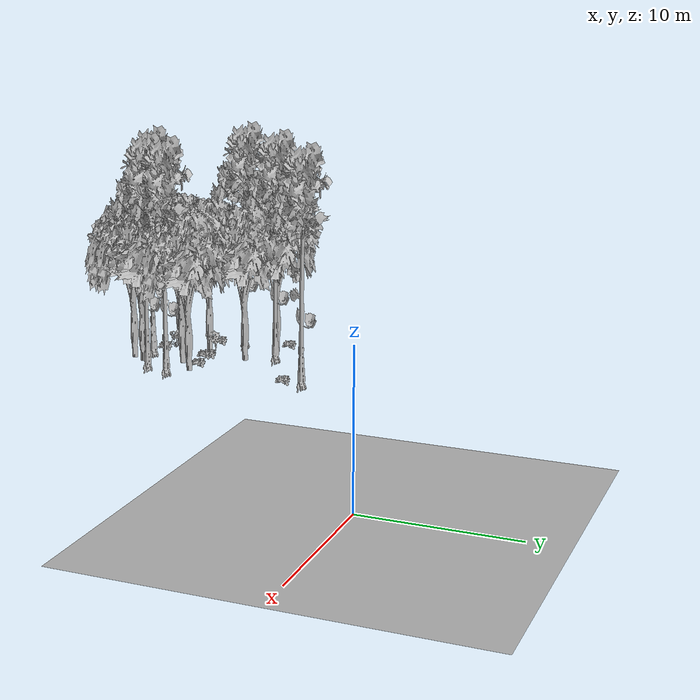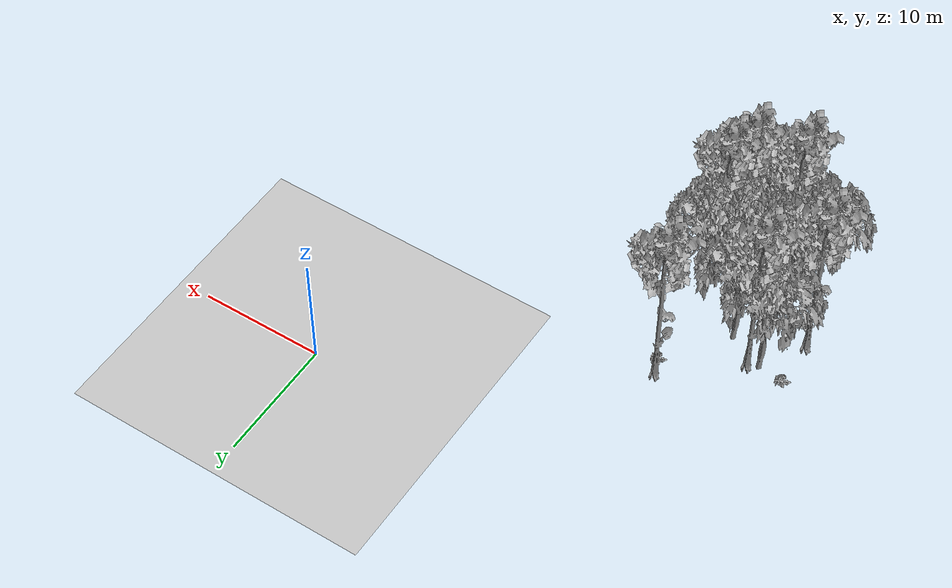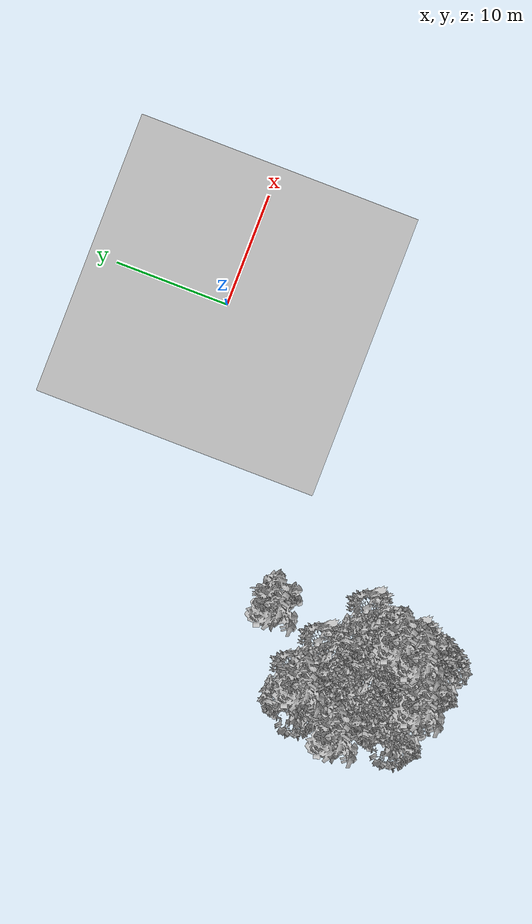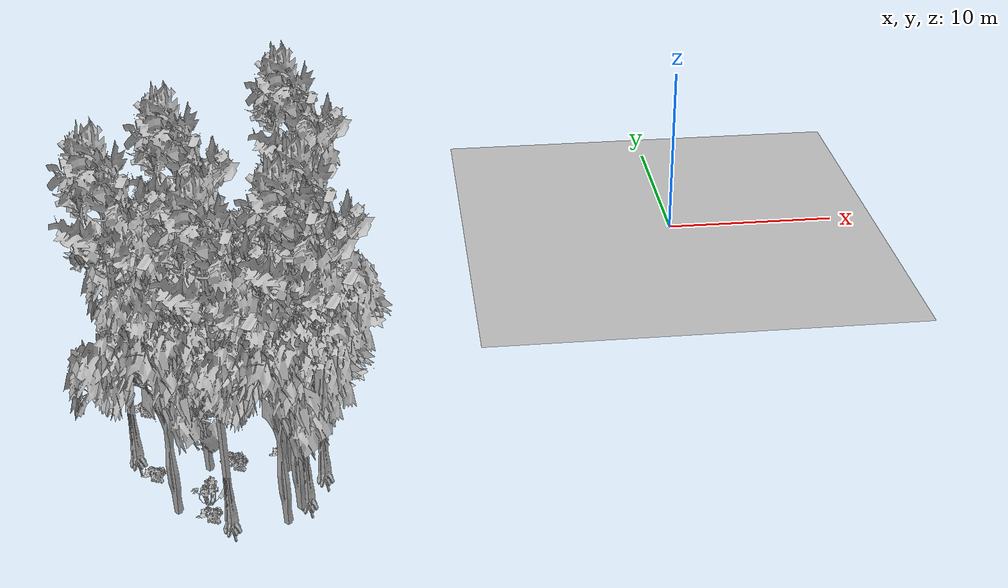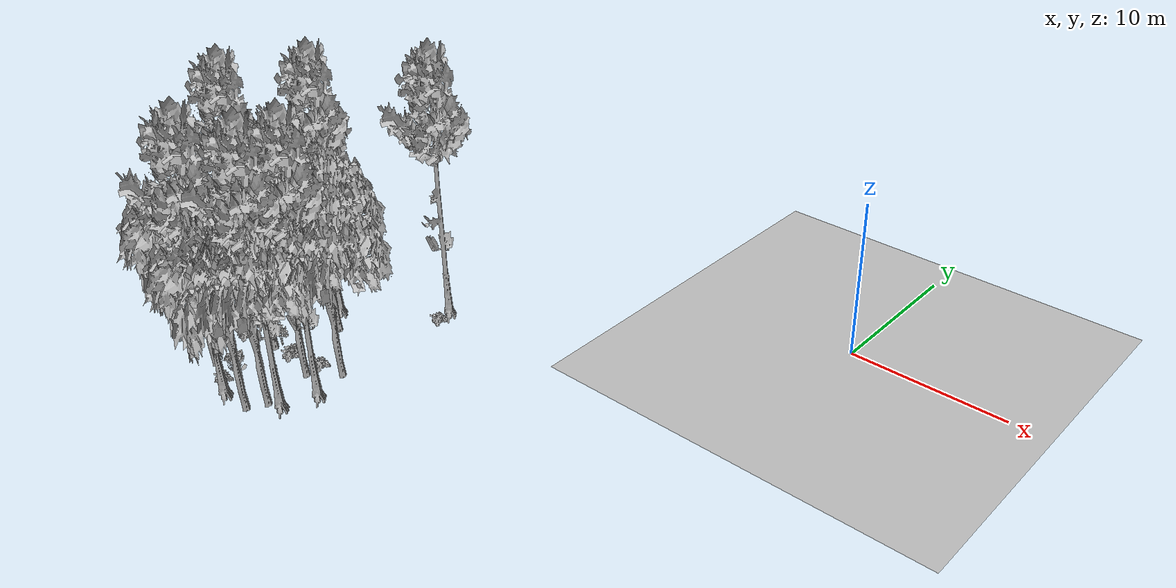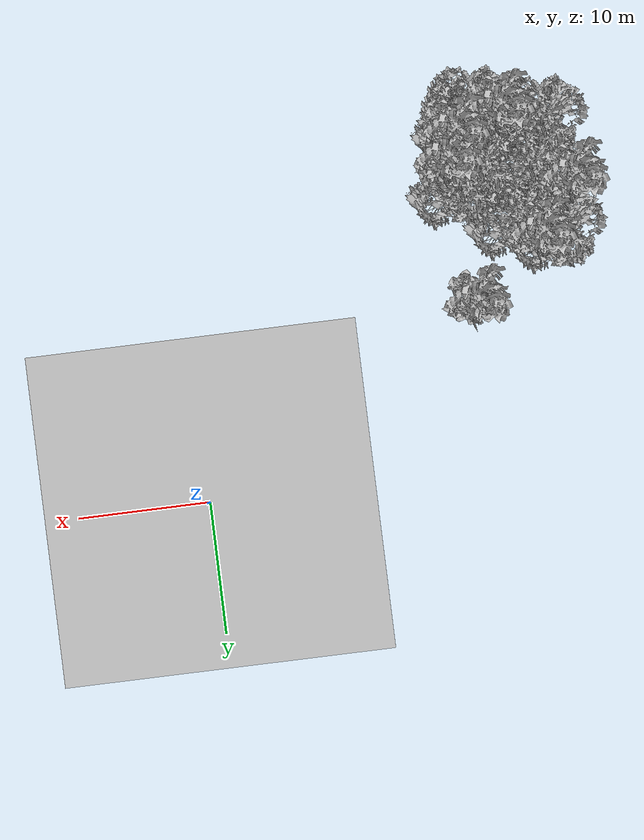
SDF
<sdf version="1.7">
 <world name="default">
  <model name="ground_plane">
   <static>1</static>
   <link name="link">
    <collision name="collision">
     <pose>-50 0 0 0 -0 0</pose>
     <geometry><plane><normal>0 0 1</normal><size>80 80</size></plane></geometry>
     <surface><contact><ode><min_depth>0.01</min_depth><max_vel>0</max_vel></ode></contact></surface>
    </collision>
    <visual name="grass">
     <cast_shadows>0</cast_shadows>
     <geometry>
      <mesh>
       <scale>0.46714285714285714 0.46714285714285714 0.1</scale>
       <uri>file://grass_plane/meshes/grass_plane.dae</uri>
      </mesh>
     </geometry>
    </visual>
   </link>
  </model>
  <model name="Tree 9">
   <static>1</static>
   <pose>-21.693524342783427 -24.979738271324365 0 1.57079 -0 0</pose>
   <link name="link">
    <collision name="collision">
     <geometry><mesh><scale>3.5 5 3.5</scale><uri>model://tree_9/meshes/tree_9.obj</uri></mesh></geometry>
    </collision>
    <visual name="visual">
     <geometry><mesh><scale>3.5 5 3.5</scale><uri>model://tree_9/meshes/tree_9.obj</uri></mesh></geometry>
    </visual>
   </link>
  </model>
  <model name="Tree 167">
   <static>1</static>
   <pose>-22.758314374811313 -22.50497529189002 0 1.57079 -0 0</pose>
   <link name="link">
    <collision name="collision">
     <geometry><mesh><scale>3.5 5 3.5</scale><uri>model://tree_2/meshes/tree_2.obj</uri></mesh></geometry>
    </collision>
    <visual name="visual">
     <geometry><mesh><scale>3.5 5 3.5</scale><uri>model://tree_2/meshes/tree_2.obj</uri></mesh></geometry>
    </visual>
   </link>
  </model>
  <model name="Tree 192">
   <static>1</static>
   <pose>-26.502214497970375 -22.04905408296468 0 1.57079 -0 0</pose>
   <link name="link">
    <collision name="collision">
     <geometry><mesh><scale>3.5 5 3.5</scale><uri>model://tree_2/meshes/tree_2.obj</uri></mesh></geometry>
    </collision>
    <visual name="visual">
     <geometry><mesh><scale>3.5 5 3.5</scale><uri>model://tree_2/meshes/tree_2.obj</uri></mesh></geometry>
    </visual>
   </link>
  </model>
  <model name="Tree 198">
   <static>1</static>
   <pose>-25.127764147958942 -18.391849600263896 0 1.57079 -0 0</pose>
   <link name="link">
    <collision name="collision">
     <geometry><mesh><scale>3.5 5 3.5</scale><uri>model://tree_2/meshes/tree_2.obj</uri></mesh></geometry>
    </collision>
    <visual name="visual">
     <geometry><mesh><scale>3.5 5 3.5</scale><uri>model://tree_2/meshes/tree_2.obj</uri></mesh></geometry>
    </visual>
   </link>
  </model>
  <model name="Tree 351">
   <static>1</static>
   <pose>-22.68183811953903 -26.572876418183036 0 1.57079 -0 0</pose>
   <link name="link">
    <collision name="collision">
     <geometry><mesh><scale>3.5 5 3.5</scale><uri>model://tree_2/meshes/tree_2.obj</uri></mesh></geometry>
    </collision>
    <visual name="visual">
     <geometry><mesh><scale>3.5 5 3.5</scale><uri>model://tree_2/meshes/tree_2.obj</uri></mesh></geometry>
    </visual>
   </link>
  </model>
  <model name="Tree 385">
   <static>1</static>
   <pose>-27.718940499484603 -25.264402749554336 0 1.57079 -0 0</pose>
   <link name="link">
    <collision name="collision">
     <geometry><mesh><scale>3.5 5 3.5</scale><uri>model://tree_2/meshes/tree_2.obj</uri></mesh></geometry>
    </collision>
    <visual name="visual">
     <geometry><mesh><scale>3.5 5 3.5</scale><uri>model://tree_2/meshes/tree_2.obj</uri></mesh></geometry>
    </visual>
   </link>
  </model>
  <model name="Tree 423">
   <static>1</static>
   <pose>-27.107036041074174 -16.75406140154413 0 1.57079 -0 0</pose>
   <link name="link">
    <collision name="collision">
     <geometry><mesh><scale>3.5 5 3.5</scale><uri>model://tree_9/meshes/tree_9.obj</uri></mesh></geometry>
    </collision>
    <visual name="visual">
     <geometry><mesh><scale>3.5 5 3.5</scale><uri>model://tree_9/meshes/tree_9.obj</uri></mesh></geometry>
    </visual>
   </link>
  </model>
  <model name="Tree 492">
   <static>1</static>
   <pose>-21.17161847342189 -21.153933222378576 0 1.57079 -0 0</pose>
   <link name="link">
    <collision name="collision">
     <geometry><mesh><scale>3.5 5 3.5</scale><uri>model://tree_2/meshes/tree_2.obj</uri></mesh></geometry>
    </collision>
    <visual name="visual">
     <geometry><mesh><scale>3.5 5 3.5</scale><uri>model://tree_2/meshes/tree_2.obj</uri></mesh></geometry>
    </visual>
   </link>
  </model>
  <model name="Tree 493">
   <static>1</static>
   <pose>-22.108037111555646 -25.53293519348746 0 1.57079 -0 0</pose>
   <link name="link">
    <collision name="collision">
     <geometry><mesh><scale>3.5 5 3.5</scale><uri>model://tree_2/meshes/tree_2.obj</uri></mesh></geometry>
    </collision>
    <visual name="visual">
     <geometry><mesh><scale>3.5 5 3.5</scale><uri>model://tree_2/meshes/tree_2.obj</uri></mesh></geometry>
    </visual>
   </link>
  </model>
  <model name="Tree 520">
   <static>1</static>
   <pose>-21.80510213114768 -12.357711673226035 0 1.57079 -0 0</pose>
   <link name="link">
    <collision name="collision">
     <geometry><mesh><scale>3.5 5 3.5</scale><uri>model://tree_9/meshes/tree_9.obj</uri></mesh></geometry>
    </collision>
    <visual name="visual">
     <geometry><mesh><scale>3.5 5 3.5</scale><uri>model://tree_9/meshes/tree_9.obj</uri></mesh></geometry>
    </visual>
   </link>
  </model>
  <model name="Tree 526">
   <static>1</static>
   <pose>-25.1651627383905 -26.322859535479175 0 1.57079 -0 0</pose>
   <link name="link">
    <collision name="collision">
     <geometry><mesh><scale>3.5 5 3.5</scale><uri>model://tree_9/meshes/tree_9.obj</uri></mesh></geometry>
    </collision>
    <visual name="visual">
     <geometry><mesh><scale>3.5 5 3.5</scale><uri>model://tree_9/meshes/tree_9.obj</uri></mesh></geometry>
    </visual>
   </link>
  </model>
  <model name="Tree 581">
   <static>1</static>
   <pose>-28.06686318595358 -17.019770700257393 0 1.57079 -0 0</pose>
   <link name="link">
    <collision name="collision">
     <geometry><mesh><scale>3.5 5 3.5</scale><uri>model://tree_2/meshes/tree_2.obj</uri></mesh></geometry>
    </collision>
    <visual name="visual">
     <geometry><mesh><scale>3.5 5 3.5</scale><uri>model://tree_2/meshes/tree_2.obj</uri></mesh></geometry>
    </visual>
   </link>
  </model>
  <model name="Tree 589">
   <static>1</static>
   <pose>-20.94290410003142 -22.998977976155963 0 1.57079 -0 0</pose>
   <link name="link">
    <collision name="collision">
     <geometry><mesh><scale>3.5 5 3.5</scale><uri>model://tree_9/meshes/tree_9.obj</uri></mesh></geometry>
    </collision>
    <visual name="visual">
     <geometry><mesh><scale>3.5 5 3.5</scale><uri>model://tree_9/meshes/tree_9.obj</uri></mesh></geometry>
    </visual>
   </link>
  </model>
  <model name="Tree 618">
   <static>1</static>
   <pose>-29.963270298233688 -20.6734319071862 0 1.57079 -0 0</pose>
   <link name="link">
    <collision name="collision">
     <geometry><mesh><scale>3.5 5 3.5</scale><uri>model://tree_9/meshes/tree_9.obj</uri></mesh></geometry>
    </collision>
    <visual name="visual">
     <geometry><mesh><scale>3.5 5 3.5</scale><uri>model://tree_9/meshes/tree_9.obj</uri></mesh></geometry>
    </visual>
   </link>
  </model>
  <model name="Bush 8">
   <static>1</static>
   <pose>-26.246547118009946 -24.88939157339937 0 1.57079 -0 0</pose>
   <link name="link">
    <collision name="collision">
     <geometry><mesh><scale>2 2 2</scale><uri>model://bush_4/meshes/bush_4.obj</uri></mesh></geometry>
     <surface><contact><collide_without_contact>false</collide_without_contact></contact></surface>
    </collision>
    <visual name="visual">
     <geometry><mesh><scale>2 2 2</scale><uri>model://bush_4/meshes/bush_4.obj</uri></mesh></geometry>
    </visual>
   </link>
  </model>
  <model name="Bush 16">
   <static>1</static>
   <pose>-28.995255043913353 -22.373036791557254 0 1.57079 -0 0</pose>
   <link name="link">
    <collision name="collision">
     <geometry><mesh><scale>2 2 2</scale><uri>model://bush_2/meshes/bush_2.obj</uri></mesh></geometry>
     <surface><contact><collide_without_contact>false</collide_without_contact></contact></surface>
    </collision>
    <visual name="visual">
     <geometry><mesh><scale>2 2 2</scale><uri>model://bush_2/meshes/bush_2.obj</uri></mesh></geometry>
    </visual>
   </link>
  </model>
  <model name="Bush 86">
   <static>1</static>
   <pose>-30.031370668947687 -16.82423796551766 0 1.57079 -0 0</pose>
   <link name="link">
    <collision name="collision">
     <geometry><mesh><scale>2 2 2</scale><uri>model://bush_2/meshes/bush_2.obj</uri></mesh></geometry>
     <surface><contact><collide_without_contact>false</collide_without_contact></contact></surface>
    </collision>
    <visual name="visual">
     <geometry><mesh><scale>2 2 2</scale><uri>model://bush_2/meshes/bush_2.obj</uri></mesh></geometry>
    </visual>
   </link>
  </model>
  <model name="Bush 239">
   <static>1</static>
   <pose>-21.37282863930319 -13.629283046663083 0 1.57079 -0 0</pose>
   <link name="link">
    <collision name="collision">
     <geometry><mesh><scale>2 2 2</scale><uri>model://bush_2/meshes/bush_2.obj</uri></mesh></geometry>
     <surface><contact><collide_without_contact>false</collide_without_contact></contact></surface>
    </collision>
    <visual name="visual">
     <geometry><mesh><scale>2 2 2</scale><uri>model://bush_2/meshes/bush_2.obj</uri></mesh></geometry>
    </visual>
   </link>
  </model>
  <model name="Bush 268">
   <static>1</static>
   <pose>-26.36120005275078 -21.52090646262642 0 1.57079 -0 0</pose>
   <link name="link">
    <collision name="collision">
     <geometry><mesh><scale>2 2 2</scale><uri>model://bush_5/meshes/bush_5.obj</uri></mesh></geometry>
     <surface><contact><collide_without_contact>false</collide_without_contact></contact></surface>
    </collision>
    <visual name="visual">
     <geometry><mesh><scale>2 2 2</scale><uri>model://bush_5/meshes/bush_5.obj</uri></mesh></geometry>
    </visual>
   </link>
  </model>
  <model name="Bush 278">
   <static>1</static>
   <pose>-25.334988556265504 -21.569713477730758 0 1.57079 -0 0</pose>
   <link name="link">
    <collision name="collision">
     <geometry><mesh><scale>2 2 2</scale><uri>model://bush_2/meshes/bush_2.obj</uri></mesh></geometry>
     <surface><contact><collide_without_contact>false</collide_without_contact></contact></surface>
    </collision>
    <visual name="visual">
     <geometry><mesh><scale>2 2 2</scale><uri>model://bush_2/meshes/bush_2.obj</uri></mesh></geometry>
    </visual>
   </link>
  </model>
  <model name="Bush 306">
   <static>1</static>
   <pose>-25.1555938634341 -21.89834301631489 0 1.57079 -0 0</pose>
   <link name="link">
    <collision name="collision">
     <geometry><mesh><scale>2 2 2</scale><uri>model://bush_2/meshes/bush_2.obj</uri></mesh></geometry>
     <surface><contact><collide_without_contact>false</collide_without_contact></contact></surface>
    </collision>
    <visual name="visual">
     <geometry><mesh><scale>2 2 2</scale><uri>model://bush_2/meshes/bush_2.obj</uri></mesh></geometry>
    </visual>
   </link>
  </model>
  <model name="Bush 493">
   <static>1</static>
   <pose>-26.142343467037747 -25.8015412707997 0 1.57079 -0 0</pose>
   <link name="link">
    <collision name="collision">
     <geometry><mesh><scale>2 2 2</scale><uri>model://bush_2/meshes/bush_2.obj</uri></mesh></geometry>
     <surface><contact><collide_without_contact>false</collide_without_contact></contact></surface>
    </collision>
    <visual name="visual">
     <geometry><mesh><scale>2 2 2</scale><uri>model://bush_2/meshes/bush_2.obj</uri></mesh></geometry>
    </visual>
   </link>
  </model>
  <model name="Bush 546">
   <static>1</static>
   <pose>-22.99621601775521 -21.319160365884606 0 1.57079 -0 0</pose>
   <link name="link">
    <collision name="collision">
     <geometry><mesh><scale>2 2 2</scale><uri>model://bush_2/meshes/bush_2.obj</uri></mesh></geometry>
     <surface><contact><collide_without_contact>false</collide_without_contact></contact></surface>
    </collision>
    <visual name="visual">
     <geometry><mesh><scale>2 2 2</scale><uri>model://bush_2/meshes/bush_2.obj</uri></mesh></geometry>
    </visual>
   </link>
  </model>
 </world>
</sdf>
